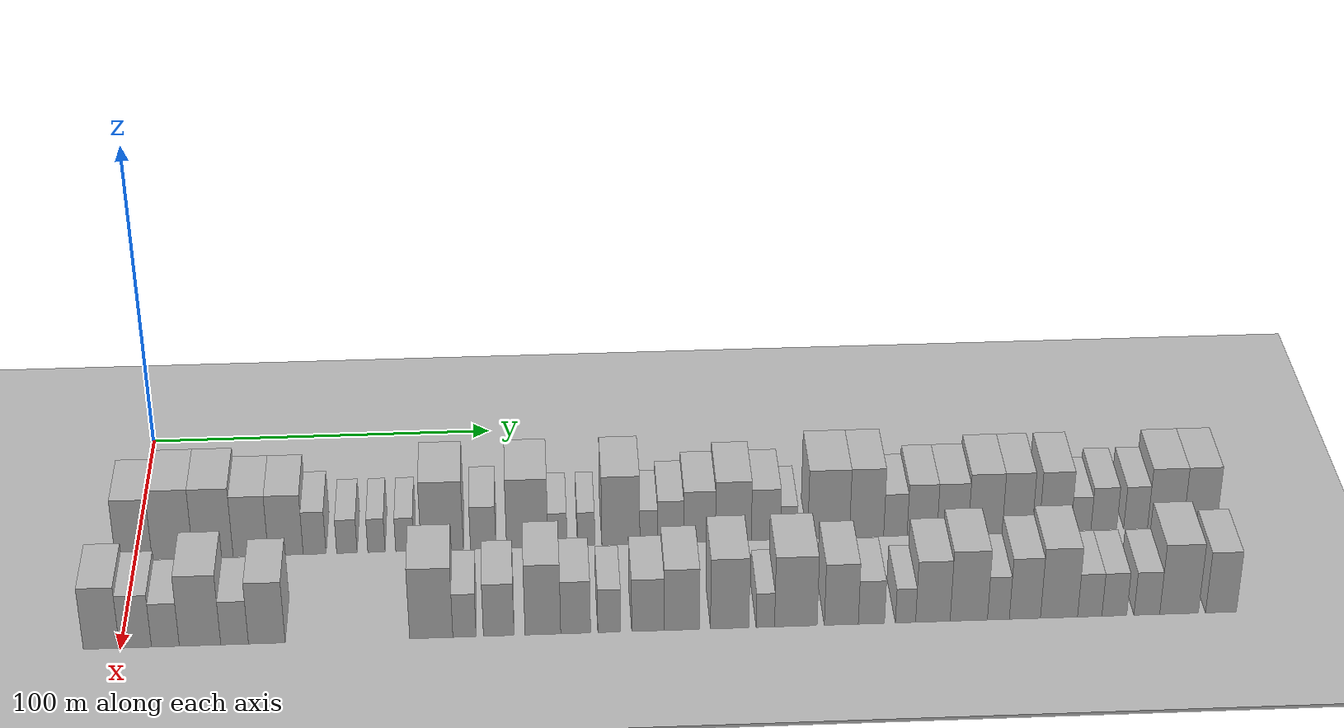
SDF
<sdf version="1.6">
 <world name="default">
  <include><name>ground_plane_1</name><uri>model://HANNAS_ground_plane</uri></include>
  <include>
   <name>ground_plane_2</name>
   <uri>model://HANNAS_ground_plane</uri>
   <pose>100 0 0  0 0 0</pose>
  </include>
  <model name="building_30">
   <static>1</static>
   <pose>50.0000 -0.1729 0 0.000000 0.000000 0.000000</pose>
   <link name="link">
    <pose>0 0 10.50 0 0 0</pose>
    <collision name="collision"><geometry><box><size>20.0000 10.2520 21.0000</size></box></geometry></collision>
    <visual name="visual">
     <cast_shadows>0</cast_shadows>
     <geometry><box><size>20.0000 10.2520 21.0000</size></box></geometry>
     <material>
      <script>
       <uri>model://HANNAS_wall/materials/scripts</uri>
       <uri>model://HANNAS_wall/materials/textures</uri>
       <name>vrc/HANNAS_wall</name>
      </script>
     </material>
    </visual>
   </link>
  </model>
  <model name="building_31">
   <static>1</static>
   <pose>50.0000 10.7029 0 0.000000 0.000000 0.000000</pose>
   <link name="link">
    <pose>0 0 12.00 0 0 0</pose>
    <collision name="collision"><geometry><box><size>20.0000 11.4996 24.0000</size></box></geometry></collision>
    <visual name="visual">
     <cast_shadows>0</cast_shadows>
     <geometry><box><size>20.0000 11.4996 24.0000</size></box></geometry>
     <material>
      <script>
       <uri>model://HANNAS_wall/materials/scripts</uri>
       <uri>model://HANNAS_wall/materials/textures</uri>
       <name>vrc/HANNAS_wall</name>
      </script>
     </material>
    </visual>
   </link>
  </model>
  <model name="building_32">
   <static>1</static>
   <pose>50.0000 22.0867 0 0.000000 0.000000 0.000000</pose>
   <link name="link">
    <pose>0 0 12.00 0 0 0</pose>
    <collision name="collision"><geometry><box><size>20.0000 11.2679 24.0000</size></box></geometry></collision>
    <visual name="visual">
     <cast_shadows>0</cast_shadows>
     <geometry><box><size>20.0000 11.2679 24.0000</size></box></geometry>
     <material>
      <script>
       <uri>model://HANNAS_wall/materials/scripts</uri>
       <uri>model://HANNAS_wall/materials/textures</uri>
       <name>vrc/HANNAS_wall</name>
      </script>
     </material>
    </visual>
   </link>
  </model>
  <model name="building_33">
   <static>1</static>
   <pose>50.0000 32.6490 0 0.000000 0.000000 0.000000</pose>
   <link name="link">
    <pose>0 0 10.50 0 0 0</pose>
    <collision name="collision"><geometry><box><size>20.0000 9.8569 21.0000</size></box></geometry></collision>
    <visual name="visual">
     <cast_shadows>0</cast_shadows>
     <geometry><box><size>20.0000 9.8569 21.0000</size></box></geometry>
     <material>
      <script>
       <uri>model://HANNAS_wall/materials/scripts</uri>
       <uri>model://HANNAS_wall/materials/textures</uri>
       <name>vrc/HANNAS_wall</name>
      </script>
     </material>
    </visual>
   </link>
  </model>
  <model name="building_34">
   <static>1</static>
   <pose>50.0000 42.4987 0 0.000000 0.000000 0.000000</pose>
   <link name="link">
    <pose>0 0 10.50 0 0 0</pose>
    <collision name="collision"><geometry><box><size>20.0000 9.8425 21.0000</size></box></geometry></collision>
    <visual name="visual">
     <cast_shadows>0</cast_shadows>
     <geometry><box><size>20.0000 9.8425 21.0000</size></box></geometry>
     <material>
      <script>
       <uri>model://HANNAS_wall/materials/scripts</uri>
       <uri>model://HANNAS_wall/materials/textures</uri>
       <name>vrc/HANNAS_wall</name>
      </script>
     </material>
    </visual>
   </link>
  </model>
  <model name="building_35">
   <static>1</static>
   <pose>50.0000 50.6380 0 0.000000 0.000000 0.000000</pose>
   <link name="link">
    <pose>0 0 7.50 0 0 0</pose>
    <collision name="collision"><geometry><box><size>20.0000 6.4363 15.0000</size></box></geometry></collision>
    <visual name="visual">
     <cast_shadows>0</cast_shadows>
     <geometry><box><size>20.0000 6.4363 15.0000</size></box></geometry>
     <material>
      <script>
       <uri>model://HANNAS_wall/materials/scripts</uri>
       <uri>model://HANNAS_wall/materials/textures</uri>
       <name>vrc/HANNAS_wall</name>
      </script>
     </material>
    </visual>
   </link>
  </model>
  <model name="building_36">
   <static>1</static>
   <pose>50.0000 59.7436 0 0.000000 0.000000 0.000000</pose>
   <link name="link">
    <pose>0 0 6.00 0 0 0</pose>
    <collision name="collision"><geometry><box><size>20.0000 5.7747 12.0000</size></box></geometry></collision>
    <visual name="visual">
     <cast_shadows>0</cast_shadows>
     <geometry><box><size>20.0000 5.7747 12.0000</size></box></geometry>
     <material>
      <script>
       <uri>model://HANNAS_wall/materials/scripts</uri>
       <uri>model://HANNAS_wall/materials/textures</uri>
       <name>vrc/HANNAS_wall</name>
      </script>
     </material>
    </visual>
   </link>
  </model>
  <model name="building_37">
   <static>1</static>
   <pose>50.0000 68.0749 0 0.000000 0.000000 0.000000</pose>
   <link name="link">
    <pose>0 0 6.00 0 0 0</pose>
    <collision name="collision"><geometry><box><size>20.0000 4.8880 12.0000</size></box></geometry></collision>
    <visual name="visual">
     <cast_shadows>0</cast_shadows>
     <geometry><box><size>20.0000 4.8880 12.0000</size></box></geometry>
     <material>
      <script>
       <uri>model://HANNAS_wall/materials/scripts</uri>
       <uri>model://HANNAS_wall/materials/textures</uri>
       <name>vrc/HANNAS_wall</name>
      </script>
     </material>
    </visual>
   </link>
  </model>
  <model name="building_38">
   <static>1</static>
   <pose>50.0000 76.0985 0 0.000000 0.000000 0.000000</pose>
   <link name="link">
    <pose>0 0 6.00 0 0 0</pose>
    <collision name="collision"><geometry><box><size>20.0000 5.1592 12.0000</size></box></geometry></collision>
    <visual name="visual">
     <cast_shadows>0</cast_shadows>
     <geometry><box><size>20.0000 5.1592 12.0000</size></box></geometry>
     <material>
      <script>
       <uri>model://HANNAS_wall/materials/scripts</uri>
       <uri>model://HANNAS_wall/materials/textures</uri>
       <name>vrc/HANNAS_wall</name>
      </script>
     </material>
    </visual>
   </link>
  </model>
  <model name="building_39">
   <static>1</static>
   <pose>50.0000 86.6668 0 0.000000 0.000000 0.000000</pose>
   <link name="link">
    <pose>0 0 12.00 0 0 0</pose>
    <collision name="collision"><geometry><box><size>20.0000 11.9774 24.0000</size></box></geometry></collision>
    <visual name="visual">
     <cast_shadows>0</cast_shadows>
     <geometry><box><size>20.0000 11.9774 24.0000</size></box></geometry>
     <material>
      <script>
       <uri>model://HANNAS_wall/materials/scripts</uri>
       <uri>model://HANNAS_wall/materials/textures</uri>
       <name>vrc/HANNAS_wall</name>
      </script>
     </material>
    </visual>
   </link>
  </model>
  <model name="building_40">
   <static>1</static>
   <pose>50.0000 98.2690 0 0.000000 0.000000 0.000000</pose>
   <link name="link">
    <pose>0 0 7.50 0 0 0</pose>
    <collision name="collision"><geometry><box><size>20.0000 7.2270 15.0000</size></box></geometry></collision>
    <visual name="visual">
     <cast_shadows>0</cast_shadows>
     <geometry><box><size>20.0000 7.2270 15.0000</size></box></geometry>
     <material>
      <script>
       <uri>model://HANNAS_wall/materials/scripts</uri>
       <uri>model://HANNAS_wall/materials/textures</uri>
       <name>vrc/HANNAS_wall</name>
      </script>
     </material>
    </visual>
   </link>
  </model>
  <model name="building_41">
   <static>1</static>
   <pose>50.0000 110.7591 0 0.000000 0.000000 0.000000</pose>
   <link name="link">
    <pose>0 0 12.00 0 0 0</pose>
    <collision name="collision"><geometry><box><size>20.0000 11.7533 24.0000</size></box></geometry></collision>
    <visual name="visual">
     <cast_shadows>0</cast_shadows>
     <geometry><box><size>20.0000 11.7533 24.0000</size></box></geometry>
     <material>
      <script>
       <uri>model://HANNAS_wall/materials/scripts</uri>
       <uri>model://HANNAS_wall/materials/textures</uri>
       <name>vrc/HANNAS_wall</name>
      </script>
     </material>
    </visual>
   </link>
  </model>
  <model name="building_42">
   <static>1</static>
   <pose>50.0000 119.3263 0 0.000000 0.000000 0.000000</pose>
   <link name="link">
    <pose>0 0 6.00 0 0 0</pose>
    <collision name="collision"><geometry><box><size>20.0000 5.3810 12.0000</size></box></geometry></collision>
    <visual name="visual">
     <cast_shadows>0</cast_shadows>
     <geometry><box><size>20.0000 5.3810 12.0000</size></box></geometry>
     <material>
      <script>
       <uri>model://HANNAS_wall/materials/scripts</uri>
       <uri>model://HANNAS_wall/materials/textures</uri>
       <name>vrc/HANNAS_wall</name>
      </script>
     </material>
    </visual>
   </link>
  </model>
  <model name="building_43">
   <static>1</static>
   <pose>50.0000 127.4678 0 0.000000 0.000000 0.000000</pose>
   <link name="link">
    <pose>0 0 6.00 0 0 0</pose>
    <collision name="collision"><geometry><box><size>20.0000 4.9020 12.0000</size></box></geometry></collision>
    <visual name="visual">
     <cast_shadows>0</cast_shadows>
     <geometry><box><size>20.0000 4.9020 12.0000</size></box></geometry>
     <material>
      <script>
       <uri>model://HANNAS_wall/materials/scripts</uri>
       <uri>model://HANNAS_wall/materials/textures</uri>
       <name>vrc/HANNAS_wall</name>
      </script>
     </material>
    </visual>
   </link>
  </model>
  <model name="building_44">
   <static>1</static>
   <pose>50.0000 137.3209 0 0.000000 0.000000 0.000000</pose>
   <link name="link">
    <pose>0 0 12.00 0 0 0</pose>
    <collision name="collision"><geometry><box><size>20.0000 10.8042 24.0000</size></box></geometry></collision>
    <visual name="visual">
     <cast_shadows>0</cast_shadows>
     <geometry><box><size>20.0000 10.8042 24.0000</size></box></geometry>
     <material>
      <script>
       <uri>model://HANNAS_wall/materials/scripts</uri>
       <uri>model://HANNAS_wall/materials/textures</uri>
       <name>vrc/HANNAS_wall</name>
      </script>
     </material>
    </visual>
   </link>
  </model>
  <model name="building_45">
   <static>1</static>
   <pose>50.0000 145.2696 0 0.000000 0.000000 0.000000</pose>
   <link name="link">
    <pose>0 0 6.00 0 0 0</pose>
    <collision name="collision"><geometry><box><size>20.0000 5.0934 12.0000</size></box></geometry></collision>
    <visual name="visual">
     <cast_shadows>0</cast_shadows>
     <geometry><box><size>20.0000 5.0934 12.0000</size></box></geometry>
     <material>
      <script>
       <uri>model://HANNAS_wall/materials/scripts</uri>
       <uri>model://HANNAS_wall/materials/textures</uri>
       <name>vrc/HANNAS_wall</name>
      </script>
     </material>
    </visual>
   </link>
  </model>
  <model name="building_46">
   <static>1</static>
   <pose>50.0000 151.5181 0 0.000000 0.000000 0.000000</pose>
   <link name="link">
    <pose>0 0 7.50 0 0 0</pose>
    <collision name="collision"><geometry><box><size>20.0000 7.4036 15.0000</size></box></geometry></collision>
    <visual name="visual">
     <cast_shadows>0</cast_shadows>
     <geometry><box><size>20.0000 7.4036 15.0000</size></box></geometry>
     <material>
      <script>
       <uri>model://HANNAS_wall/materials/scripts</uri>
       <uri>model://HANNAS_wall/materials/textures</uri>
       <name>vrc/HANNAS_wall</name>
      </script>
     </material>
    </visual>
   </link>
  </model>
  <model name="building_47">
   <static>1</static>
   <pose>50.0000 159.7162 0 0.000000 0.000000 0.000000</pose>
   <link name="link">
    <pose>0 0 9.00 0 0 0</pose>
    <collision name="collision"><geometry><box><size>20.0000 8.9927 18.0000</size></box></geometry></collision>
    <visual name="visual">
     <cast_shadows>0</cast_shadows>
     <geometry><box><size>20.0000 8.9927 18.0000</size></box></geometry>
     <material>
      <script>
       <uri>model://HANNAS_wall/materials/scripts</uri>
       <uri>model://HANNAS_wall/materials/textures</uri>
       <name>vrc/HANNAS_wall</name>
      </script>
     </material>
    </visual>
   </link>
  </model>
  <model name="building_48">
   <static>1</static>
   <pose>50.0000 169.3280 0 0.000000 0.000000 0.000000</pose>
   <link name="link">
    <pose>0 0 10.50 0 0 0</pose>
    <collision name="collision"><geometry><box><size>20.0000 10.2309 21.0000</size></box></geometry></collision>
    <visual name="visual">
     <cast_shadows>0</cast_shadows>
     <geometry><box><size>20.0000 10.2309 21.0000</size></box></geometry>
     <material>
      <script>
       <uri>model://HANNAS_wall/materials/scripts</uri>
       <uri>model://HANNAS_wall/materials/textures</uri>
       <name>vrc/HANNAS_wall</name>
      </script>
     </material>
    </visual>
   </link>
  </model>
  <model name="building_49">
   <static>1</static>
   <pose>50.0000 178.5929 0 0.000000 0.000000 0.000000</pose>
   <link name="link">
    <pose>0 0 9.00 0 0 0</pose>
    <collision name="collision"><geometry><box><size>20.0000 8.2989 18.0000</size></box></geometry></collision>
    <visual name="visual">
     <cast_shadows>0</cast_shadows>
     <geometry><box><size>20.0000 8.2989 18.0000</size></box></geometry>
     <material>
      <script>
       <uri>model://HANNAS_wall/materials/scripts</uri>
       <uri>model://HANNAS_wall/materials/textures</uri>
       <name>vrc/HANNAS_wall</name>
      </script>
     </material>
    </visual>
   </link>
  </model>
  <model name="building_50">
   <static>1</static>
   <pose>50.0000 185.1520 0 0.000000 0.000000 0.000000</pose>
   <link name="link">
    <pose>0 0 6.00 0 0 0</pose>
    <collision name="collision"><geometry><box><size>20.0000 4.8194 12.0000</size></box></geometry></collision>
    <visual name="visual">
     <cast_shadows>0</cast_shadows>
     <geometry><box><size>20.0000 4.8194 12.0000</size></box></geometry>
     <material>
      <script>
       <uri>model://HANNAS_wall/materials/scripts</uri>
       <uri>model://HANNAS_wall/materials/textures</uri>
       <name>vrc/HANNAS_wall</name>
      </script>
     </material>
    </visual>
   </link>
  </model>
  <model name="building_51">
   <static>1</static>
   <pose>50.0000 196.5299 0 0.000000 0.000000 0.000000</pose>
   <link name="link">
    <pose>0 0 12.00 0 0 0</pose>
    <collision name="collision"><geometry><box><size>20.0000 11.9364 24.0000</size></box></geometry></collision>
    <visual name="visual">
     <cast_shadows>0</cast_shadows>
     <geometry><box><size>20.0000 11.9364 24.0000</size></box></geometry>
     <material>
      <script>
       <uri>model://HANNAS_wall/materials/scripts</uri>
       <uri>model://HANNAS_wall/materials/textures</uri>
       <name>vrc/HANNAS_wall</name>
      </script>
     </material>
    </visual>
   </link>
  </model>
  <model name="building_52">
   <static>1</static>
   <pose>50.0000 207.3973 0 0.000000 0.000000 0.000000</pose>
   <link name="link">
    <pose>0 0 12.00 0 0 0</pose>
    <collision name="collision"><geometry><box><size>20.0000 9.7985 24.0000</size></box></geometry></collision>
    <visual name="visual">
     <cast_shadows>0</cast_shadows>
     <geometry><box><size>20.0000 9.7985 24.0000</size></box></geometry>
     <material>
      <script>
       <uri>model://HANNAS_wall/materials/scripts</uri>
       <uri>model://HANNAS_wall/materials/textures</uri>
       <name>vrc/HANNAS_wall</name>
      </script>
     </material>
    </visual>
   </link>
  </model>
  <model name="building_53">
   <static>1</static>
   <pose>50.0000 215.6552 0 0.000000 0.000000 0.000000</pose>
   <link name="link">
    <pose>0 0 7.50 0 0 0</pose>
    <collision name="collision"><geometry><box><size>20.0000 6.7173 15.0000</size></box></geometry></collision>
    <visual name="visual">
     <cast_shadows>0</cast_shadows>
     <geometry><box><size>20.0000 6.7173 15.0000</size></box></geometry>
     <material>
      <script>
       <uri>model://HANNAS_wall/materials/scripts</uri>
       <uri>model://HANNAS_wall/materials/textures</uri>
       <name>vrc/HANNAS_wall</name>
      </script>
     </material>
    </visual>
   </link>
  </model>
  <model name="building_54">
   <static>1</static>
   <pose>50.0000 223.3062 0 0.000000 0.000000 0.000000</pose>
   <link name="link">
    <pose>0 0 9.00 0 0 0</pose>
    <collision name="collision"><geometry><box><size>20.0000 8.5845 18.0000</size></box></geometry></collision>
    <visual name="visual">
     <cast_shadows>0</cast_shadows>
     <geometry><box><size>20.0000 8.5845 18.0000</size></box></geometry>
     <material>
      <script>
       <uri>model://HANNAS_wall/materials/scripts</uri>
       <uri>model://HANNAS_wall/materials/textures</uri>
       <name>vrc/HANNAS_wall</name>
      </script>
     </material>
    </visual>
   </link>
  </model>
  <model name="building_55">
   <static>1</static>
   <pose>50.0000 232.0798 0 0.000000 0.000000 0.000000</pose>
   <link name="link">
    <pose>0 0 9.00 0 0 0</pose>
    <collision name="collision"><geometry><box><size>20.0000 8.9626 18.0000</size></box></geometry></collision>
    <visual name="visual">
     <cast_shadows>0</cast_shadows>
     <geometry><box><size>20.0000 8.9626 18.0000</size></box></geometry>
     <material>
      <script>
       <uri>model://HANNAS_wall/materials/scripts</uri>
       <uri>model://HANNAS_wall/materials/textures</uri>
       <name>vrc/HANNAS_wall</name>
      </script>
     </material>
    </visual>
   </link>
  </model>
  <model name="building_56">
   <static>1</static>
   <pose>50.0000 241.4460 0 0.000000 0.000000 0.000000</pose>
   <link name="link">
    <pose>0 0 10.50 0 0 0</pose>
    <collision name="collision"><geometry><box><size>20.0000 9.7699 21.0000</size></box></geometry></collision>
    <visual name="visual">
     <cast_shadows>0</cast_shadows>
     <geometry><box><size>20.0000 9.7699 21.0000</size></box></geometry>
     <material>
      <script>
       <uri>model://HANNAS_wall/materials/scripts</uri>
       <uri>model://HANNAS_wall/materials/textures</uri>
       <name>vrc/HANNAS_wall</name>
      </script>
     </material>
    </visual>
   </link>
  </model>
  <model name="building_57">
   <static>1</static>
   <pose>50.0000 250.6309 0 0.000000 0.000000 0.000000</pose>
   <link name="link">
    <pose>0 0 10.50 0 0 0</pose>
    <collision name="collision"><geometry><box><size>20.0000 8.5998 21.0000</size></box></geometry></collision>
    <visual name="visual">
     <cast_shadows>0</cast_shadows>
     <geometry><box><size>20.0000 8.5998 21.0000</size></box></geometry>
     <material>
      <script>
       <uri>model://HANNAS_wall/materials/scripts</uri>
       <uri>model://HANNAS_wall/materials/textures</uri>
       <name>vrc/HANNAS_wall</name>
      </script>
     </material>
    </visual>
   </link>
  </model>
  <model name="building_58">
   <static>1</static>
   <pose>50.0000 261.5186 0 0.000000 0.000000 0.000000</pose>
   <link name="link">
    <pose>0 0 10.50 0 0 0</pose>
    <collision name="collision"><geometry><box><size>20.0000 9.1755 21.0000</size></box></geometry></collision>
    <visual name="visual">
     <cast_shadows>0</cast_shadows>
     <geometry><box><size>20.0000 9.1755 21.0000</size></box></geometry>
     <material>
      <script>
       <uri>model://HANNAS_wall/materials/scripts</uri>
       <uri>model://HANNAS_wall/materials/textures</uri>
       <name>vrc/HANNAS_wall</name>
      </script>
     </material>
    </visual>
   </link>
  </model>
  <model name="building_59">
   <static>1</static>
   <pose>50.0000 268.9922 0 0.000000 0.000000 0.000000</pose>
   <link name="link">
    <pose>0 0 6.00 0 0 0</pose>
    <collision name="collision"><geometry><box><size>20.0000 5.7719 12.0000</size></box></geometry></collision>
    <visual name="visual">
     <cast_shadows>0</cast_shadows>
     <geometry><box><size>20.0000 5.7719 12.0000</size></box></geometry>
     <material>
      <script>
       <uri>model://HANNAS_wall/materials/scripts</uri>
       <uri>model://HANNAS_wall/materials/textures</uri>
       <name>vrc/HANNAS_wall</name>
      </script>
     </material>
    </visual>
   </link>
  </model>
  <model name="building_60">
   <static>1</static>
   <pose>50.0000 275.5932 0 0.000000 0.000000 0.000000</pose>
   <link name="link">
    <pose>0 0 7.50 0 0 0</pose>
    <collision name="collision"><geometry><box><size>20.0000 7.4302 15.0000</size></box></geometry></collision>
    <visual name="visual">
     <cast_shadows>0</cast_shadows>
     <geometry><box><size>20.0000 7.4302 15.0000</size></box></geometry>
     <material>
      <script>
       <uri>model://HANNAS_wall/materials/scripts</uri>
       <uri>model://HANNAS_wall/materials/textures</uri>
       <name>vrc/HANNAS_wall</name>
      </script>
     </material>
    </visual>
   </link>
  </model>
  <model name="building_61">
   <static>1</static>
   <pose>50.0000 284.7590 0 0.000000 0.000000 0.000000</pose>
   <link name="link">
    <pose>0 0 7.50 0 0 0</pose>
    <collision name="collision"><geometry><box><size>20.0000 6.9014 15.0000</size></box></geometry></collision>
    <visual name="visual">
     <cast_shadows>0</cast_shadows>
     <geometry><box><size>20.0000 6.9014 15.0000</size></box></geometry>
     <material>
      <script>
       <uri>model://HANNAS_wall/materials/scripts</uri>
       <uri>model://HANNAS_wall/materials/textures</uri>
       <name>vrc/HANNAS_wall</name>
      </script>
     </material>
    </visual>
   </link>
  </model>
  <model name="building_62">
   <static>1</static>
   <pose>50.0000 293.3827 0 0.000000 0.000000 0.000000</pose>
   <link name="link">
    <pose>0 0 10.50 0 0 0</pose>
    <collision name="collision"><geometry><box><size>20.0000 10.3460 21.0000</size></box></geometry></collision>
    <visual name="visual">
     <cast_shadows>0</cast_shadows>
     <geometry><box><size>20.0000 10.3460 21.0000</size></box></geometry>
     <material>
      <script>
       <uri>model://HANNAS_wall/materials/scripts</uri>
       <uri>model://HANNAS_wall/materials/textures</uri>
       <name>vrc/HANNAS_wall</name>
      </script>
     </material>
    </visual>
   </link>
  </model>
  <model name="building_63">
   <static>1</static>
   <pose>50.0000 303.3635 0 0.000000 0.000000 0.000000</pose>
   <link name="link">
    <pose>0 0 10.50 0 0 0</pose>
    <collision name="collision"><geometry><box><size>20.0000 9.6156 21.0000</size></box></geometry></collision>
    <visual name="visual">
     <cast_shadows>0</cast_shadows>
     <geometry><box><size>20.0000 9.6156 21.0000</size></box></geometry>
     <material>
      <script>
       <uri>model://HANNAS_wall/materials/scripts</uri>
       <uri>model://HANNAS_wall/materials/textures</uri>
       <name>vrc/HANNAS_wall</name>
      </script>
     </material>
    </visual>
   </link>
  </model>
  <model name="building_99">
   <static>1</static>
   <pose>90.0000 -5.1140 0 0.000000 0.000000 0.000000</pose>
   <link name="link">
    <pose>0 0 10.50 0 0 0</pose>
    <collision name="collision"><geometry><box><size>20.0000 9.7519 21.0000</size></box></geometry></collision>
    <visual name="visual">
     <cast_shadows>0</cast_shadows>
     <geometry><box><size>20.0000 9.7519 21.0000</size></box></geometry>
     <material>
      <script>
       <uri>model://HANNAS_wall/materials/scripts</uri>
       <uri>model://HANNAS_wall/materials/textures</uri>
       <name>vrc/HANNAS_wall</name>
      </script>
     </material>
    </visual>
   </link>
  </model>
  <model name="building_100">
   <static>1</static>
   <pose>90.0000 4.0656 0 0.000000 0.000000 0.000000</pose>
   <link name="link">
    <pose>0 0 9.00 0 0 0</pose>
    <collision name="collision"><geometry><box><size>20.0000 8.6072 18.0000</size></box></geometry></collision>
    <visual name="visual">
     <cast_shadows>0</cast_shadows>
     <geometry><box><size>20.0000 8.6072 18.0000</size></box></geometry>
     <material>
      <script>
       <uri>model://HANNAS_wall/materials/scripts</uri>
       <uri>model://HANNAS_wall/materials/textures</uri>
       <name>vrc/HANNAS_wall</name>
      </script>
     </material>
    </visual>
   </link>
  </model>
  <model name="building_101">
   <static>1</static>
   <pose>90.0000 12.1184 0 0.000000 0.000000 0.000000</pose>
   <link name="link">
    <pose>0 0 7.50 0 0 0</pose>
    <collision name="collision"><geometry><box><size>20.0000 7.4985 15.0000</size></box></geometry></collision>
    <visual name="visual">
     <cast_shadows>0</cast_shadows>
     <geometry><box><size>20.0000 7.4985 15.0000</size></box></geometry>
     <material>
      <script>
       <uri>model://HANNAS_wall/materials/scripts</uri>
       <uri>model://HANNAS_wall/materials/textures</uri>
       <name>vrc/HANNAS_wall</name>
      </script>
     </material>
    </visual>
   </link>
  </model>
  <model name="building_102">
   <static>1</static>
   <pose>90.0000 21.4566 0 0.000000 0.000000 0.000000</pose>
   <link name="link">
    <pose>0 0 12.00 0 0 0</pose>
    <collision name="collision"><geometry><box><size>20.0000 11.1780 24.0000</size></box></geometry></collision>
    <visual name="visual">
     <cast_shadows>0</cast_shadows>
     <geometry><box><size>20.0000 11.1780 24.0000</size></box></geometry>
     <material>
      <script>
       <uri>model://HANNAS_wall/materials/scripts</uri>
       <uri>model://HANNAS_wall/materials/textures</uri>
       <name>vrc/HANNAS_wall</name>
      </script>
     </material>
    </visual>
   </link>
  </model>
  <model name="building_103">
   <static>1</static>
   <pose>90.0000 30.7810 0 0.000000 0.000000 0.000000</pose>
   <link name="link">
    <pose>0 0 7.50 0 0 0</pose>
    <collision name="collision"><geometry><box><size>20.0000 7.4707 15.0000</size></box></geometry></collision>
    <visual name="visual">
     <cast_shadows>0</cast_shadows>
     <geometry><box><size>20.0000 7.4707 15.0000</size></box></geometry>
     <material>
      <script>
       <uri>model://HANNAS_wall/materials/scripts</uri>
       <uri>model://HANNAS_wall/materials/textures</uri>
       <name>vrc/HANNAS_wall</name>
      </script>
     </material>
    </visual>
   </link>
  </model>
  <model name="building_104">
   <static>1</static>
   <pose>90.0000 39.4867 0 0.000000 0.000000 0.000000</pose>
   <link name="link">
    <pose>0 0 10.50 0 0 0</pose>
    <collision name="collision"><geometry><box><size>20.0000 9.9407 21.0000</size></box></geometry></collision>
    <visual name="visual">
     <cast_shadows>0</cast_shadows>
     <geometry><box><size>20.0000 9.9407 21.0000</size></box></geometry>
     <material>
      <script>
       <uri>model://HANNAS_wall/materials/scripts</uri>
       <uri>model://HANNAS_wall/materials/textures</uri>
       <name>vrc/HANNAS_wall</name>
      </script>
     </material>
    </visual>
   </link>
  </model>
  <model name="building_105">
   <static>1</static>
   <pose>90.0000 84.0573 0 0.000000 0.000000 0.000000</pose>
   <link name="link">
    <pose>0 0 12.00 0 0 0</pose>
    <collision name="collision"><geometry><box><size>20.0000 11.7335 24.0000</size></box></geometry></collision>
    <visual name="visual">
     <cast_shadows>0</cast_shadows>
     <geometry><box><size>20.0000 11.7335 24.0000</size></box></geometry>
     <material>
      <script>
       <uri>model://HANNAS_wall/materials/scripts</uri>
       <uri>model://HANNAS_wall/materials/textures</uri>
       <name>vrc/HANNAS_wall</name>
      </script>
     </material>
    </visual>
   </link>
  </model>
  <model name="building_106">
   <static>1</static>
   <pose>90.0000 93.0801 0 0.000000 0.000000 0.000000</pose>
   <link name="link">
    <pose>0 0 7.50 0 0 0</pose>
    <collision name="collision"><geometry><box><size>20.0000 6.3120 15.0000</size></box></geometry></collision>
    <visual name="visual">
     <cast_shadows>0</cast_shadows>
     <geometry><box><size>20.0000 6.3120 15.0000</size></box></geometry>
     <material>
      <script>
       <uri>model://HANNAS_wall/materials/scripts</uri>
       <uri>model://HANNAS_wall/materials/textures</uri>
       <name>vrc/HANNAS_wall</name>
      </script>
     </material>
    </visual>
   </link>
  </model>
  <model name="building_107">
   <static>1</static>
   <pose>90.0000 102.4024 0 0.000000 0.000000 0.000000</pose>
   <link name="link">
    <pose>0 0 9.00 0 0 0</pose>
    <collision name="collision"><geometry><box><size>20.0000 8.3327 18.0000</size></box></geometry></collision>
    <visual name="visual">
     <cast_shadows>0</cast_shadows>
     <geometry><box><size>20.0000 8.3327 18.0000</size></box></geometry>
     <material>
      <script>
       <uri>model://HANNAS_wall/materials/scripts</uri>
       <uri>model://HANNAS_wall/materials/textures</uri>
       <name>vrc/HANNAS_wall</name>
      </script>
     </material>
    </visual>
   </link>
  </model>
  <model name="building_108">
   <static>1</static>
   <pose>90.0000 114.4295 0 0.000000 0.000000 0.000000</pose>
   <link name="link">
    <pose>0 0 12.00 0 0 0</pose>
    <collision name="collision"><geometry><box><size>20.0000 9.7215 24.0000</size></box></geometry></collision>
    <visual name="visual">
     <cast_shadows>0</cast_shadows>
     <geometry><box><size>20.0000 9.7215 24.0000</size></box></geometry>
     <material>
      <script>
       <uri>model://HANNAS_wall/materials/scripts</uri>
       <uri>model://HANNAS_wall/materials/textures</uri>
       <name>vrc/HANNAS_wall</name>
      </script>
     </material>
    </visual>
   </link>
  </model>
  <model name="building_109">
   <static>1</static>
   <pose>90.0000 123.3558 0 0.000000 0.000000 0.000000</pose>
   <link name="link">
    <pose>0 0 9.00 0 0 0</pose>
    <collision name="collision"><geometry><box><size>20.0000 8.1311 18.0000</size></box></geometry></collision>
    <visual name="visual">
     <cast_shadows>0</cast_shadows>
     <geometry><box><size>20.0000 8.1311 18.0000</size></box></geometry>
     <material>
      <script>
       <uri>model://HANNAS_wall/materials/scripts</uri>
       <uri>model://HANNAS_wall/materials/textures</uri>
       <name>vrc/HANNAS_wall</name>
      </script>
     </material>
    </visual>
   </link>
  </model>
  <model name="building_110">
   <static>1</static>
   <pose>90.0000 132.5464 0 0.000000 0.000000 0.000000</pose>
   <link name="link">
    <pose>0 0 7.50 0 0 0</pose>
    <collision name="collision"><geometry><box><size>20.0000 6.2500 15.0000</size></box></geometry></collision>
    <visual name="visual">
     <cast_shadows>0</cast_shadows>
     <geometry><box><size>20.0000 6.2500 15.0000</size></box></geometry>
     <material>
      <script>
       <uri>model://HANNAS_wall/materials/scripts</uri>
       <uri>model://HANNAS_wall/materials/textures</uri>
       <name>vrc/HANNAS_wall</name>
      </script>
     </material>
    </visual>
   </link>
  </model>
  <model name="building_111">
   <static>1</static>
   <pose>90.0000 143.1398 0 0.000000 0.000000 0.000000</pose>
   <link name="link">
    <pose>0 0 9.00 0 0 0</pose>
    <collision name="collision"><geometry><box><size>20.0000 8.9369 18.0000</size></box></geometry></collision>
    <visual name="visual">
     <cast_shadows>0</cast_shadows>
     <geometry><box><size>20.0000 8.9369 18.0000</size></box></geometry>
     <material>
      <script>
       <uri>model://HANNAS_wall/materials/scripts</uri>
       <uri>model://HANNAS_wall/materials/textures</uri>
       <name>vrc/HANNAS_wall</name>
      </script>
     </material>
    </visual>
   </link>
  </model>
  <model name="building_112">
   <static>1</static>
   <pose>90.0000 152.4070 0 0.000000 0.000000 0.000000</pose>
   <link name="link">
    <pose>0 0 10.50 0 0 0</pose>
    <collision name="collision"><geometry><box><size>20.0000 9.5974 21.0000</size></box></geometry></collision>
    <visual name="visual">
     <cast_shadows>0</cast_shadows>
     <geometry><box><size>20.0000 9.5974 21.0000</size></box></geometry>
     <material>
      <script>
       <uri>model://HANNAS_wall/materials/scripts</uri>
       <uri>model://HANNAS_wall/materials/textures</uri>
       <name>vrc/HANNAS_wall</name>
      </script>
     </material>
    </visual>
   </link>
  </model>
  <model name="building_113">
   <static>1</static>
   <pose>90.0000 165.4637 0 0.000000 0.000000 0.000000</pose>
   <link name="link">
    <pose>0 0 12.00 0 0 0</pose>
    <collision name="collision"><geometry><box><size>20.0000 10.5160 24.0000</size></box></geometry></collision>
    <visual name="visual">
     <cast_shadows>0</cast_shadows>
     <geometry><box><size>20.0000 10.5160 24.0000</size></box></geometry>
     <material>
      <script>
       <uri>model://HANNAS_wall/materials/scripts</uri>
       <uri>model://HANNAS_wall/materials/textures</uri>
       <name>vrc/HANNAS_wall</name>
      </script>
     </material>
    </visual>
   </link>
  </model>
  <model name="building_114">
   <static>1</static>
   <pose>90.0000 175.2450 0 0.000000 0.000000 0.000000</pose>
   <link name="link">
    <pose>0 0 6.00 0 0 0</pose>
    <collision name="collision"><geometry><box><size>20.0000 5.0466 12.0000</size></box></geometry></collision>
    <visual name="visual">
     <cast_shadows>0</cast_shadows>
     <geometry><box><size>20.0000 5.0466 12.0000</size></box></geometry>
     <material>
      <script>
       <uri>model://HANNAS_wall/materials/scripts</uri>
       <uri>model://HANNAS_wall/materials/textures</uri>
       <name>vrc/HANNAS_wall</name>
      </script>
     </material>
    </visual>
   </link>
  </model>
  <model name="building_115">
   <static>1</static>
   <pose>90.0000 183.6049 0 0.000000 0.000000 0.000000</pose>
   <link name="link">
    <pose>0 0 12.00 0 0 0</pose>
    <collision name="collision"><geometry><box><size>20.0000 11.6730 24.0000</size></box></geometry></collision>
    <visual name="visual">
     <cast_shadows>0</cast_shadows>
     <geometry><box><size>20.0000 11.6730 24.0000</size></box></geometry>
     <material>
      <script>
       <uri>model://HANNAS_wall/materials/scripts</uri>
       <uri>model://HANNAS_wall/materials/textures</uri>
       <name>vrc/HANNAS_wall</name>
      </script>
     </material>
    </visual>
   </link>
  </model>
  <model name="building_116">
   <static>1</static>
   <pose>90.0000 196.1073 0 0.000000 0.000000 0.000000</pose>
   <link name="link">
    <pose>0 0 10.50 0 0 0</pose>
    <collision name="collision"><geometry><box><size>20.0000 9.3318 21.0000</size></box></geometry></collision>
    <visual name="visual">
     <cast_shadows>0</cast_shadows>
     <geometry><box><size>20.0000 9.3318 21.0000</size></box></geometry>
     <material>
      <script>
       <uri>model://HANNAS_wall/materials/scripts</uri>
       <uri>model://HANNAS_wall/materials/textures</uri>
       <name>vrc/HANNAS_wall</name>
      </script>
     </material>
    </visual>
   </link>
  </model>
  <model name="building_117">
   <static>1</static>
   <pose>90.0000 204.3798 0 0.000000 0.000000 0.000000</pose>
   <link name="link">
    <pose>0 0 7.50 0 0 0</pose>
    <collision name="collision"><geometry><box><size>20.0000 7.2131 15.0000</size></box></geometry></collision>
    <visual name="visual">
     <cast_shadows>0</cast_shadows>
     <geometry><box><size>20.0000 7.2131 15.0000</size></box></geometry>
     <material>
      <script>
       <uri>model://HANNAS_wall/materials/scripts</uri>
       <uri>model://HANNAS_wall/materials/textures</uri>
       <name>vrc/HANNAS_wall</name>
      </script>
     </material>
    </visual>
   </link>
  </model>
  <model name="building_118">
   <static>1</static>
   <pose>90.0000 213.7672 0 0.000000 0.000000 0.000000</pose>
   <link name="link">
    <pose>0 0 6.00 0 0 0</pose>
    <collision name="collision"><geometry><box><size>20.0000 5.5617 12.0000</size></box></geometry></collision>
    <visual name="visual">
     <cast_shadows>0</cast_shadows>
     <geometry><box><size>20.0000 5.5617 12.0000</size></box></geometry>
     <material>
      <script>
       <uri>model://HANNAS_wall/materials/scripts</uri>
       <uri>model://HANNAS_wall/materials/textures</uri>
       <name>vrc/HANNAS_wall</name>
      </script>
     </material>
    </visual>
   </link>
  </model>
  <model name="building_119">
   <static>1</static>
   <pose>90.0000 221.3002 0 0.000000 0.000000 0.000000</pose>
   <link name="link">
    <pose>0 0 10.50 0 0 0</pose>
    <collision name="collision"><geometry><box><size>20.0000 9.5045 21.0000</size></box></geometry></collision>
    <visual name="visual">
     <cast_shadows>0</cast_shadows>
     <geometry><box><size>20.0000 9.5045 21.0000</size></box></geometry>
     <material>
      <script>
       <uri>model://HANNAS_wall/materials/scripts</uri>
       <uri>model://HANNAS_wall/materials/textures</uri>
       <name>vrc/HANNAS_wall</name>
      </script>
     </material>
    </visual>
   </link>
  </model>
  <model name="building_120">
   <static>1</static>
   <pose>90.0000 231.2058 0 0.000000 0.000000 0.000000</pose>
   <link name="link">
    <pose>0 0 12.00 0 0 0</pose>
    <collision name="collision"><geometry><box><size>20.0000 10.3067 24.0000</size></box></geometry></collision>
    <visual name="visual">
     <cast_shadows>0</cast_shadows>
     <geometry><box><size>20.0000 10.3067 24.0000</size></box></geometry>
     <material>
      <script>
       <uri>model://HANNAS_wall/materials/scripts</uri>
       <uri>model://HANNAS_wall/materials/textures</uri>
       <name>vrc/HANNAS_wall</name>
      </script>
     </material>
    </visual>
   </link>
  </model>
  <model name="building_121">
   <static>1</static>
   <pose>90.0000 239.3805 0 0.000000 0.000000 0.000000</pose>
   <link name="link">
    <pose>0 0 7.50 0 0 0</pose>
    <collision name="collision"><geometry><box><size>20.0000 6.0427 15.0000</size></box></geometry></collision>
    <visual name="visual">
     <cast_shadows>0</cast_shadows>
     <geometry><box><size>20.0000 6.0427 15.0000</size></box></geometry>
     <material>
      <script>
       <uri>model://HANNAS_wall/materials/scripts</uri>
       <uri>model://HANNAS_wall/materials/textures</uri>
       <name>vrc/HANNAS_wall</name>
      </script>
     </material>
    </visual>
   </link>
  </model>
  <model name="building_122">
   <static>1</static>
   <pose>90.0000 246.7032 0 0.000000 0.000000 0.000000</pose>
   <link name="link">
    <pose>0 0 10.50 0 0 0</pose>
    <collision name="collision"><geometry><box><size>20.0000 8.6027 21.0000</size></box></geometry></collision>
    <visual name="visual">
     <cast_shadows>0</cast_shadows>
     <geometry><box><size>20.0000 8.6027 21.0000</size></box></geometry>
     <material>
      <script>
       <uri>model://HANNAS_wall/materials/scripts</uri>
       <uri>model://HANNAS_wall/materials/textures</uri>
       <name>vrc/HANNAS_wall</name>
      </script>
     </material>
    </visual>
   </link>
  </model>
  <model name="building_123">
   <static>1</static>
   <pose>90.0000 256.1412 0 0.000000 0.000000 0.000000</pose>
   <link name="link">
    <pose>0 0 12.00 0 0 0</pose>
    <collision name="collision"><geometry><box><size>20.0000 10.2732 24.0000</size></box></geometry></collision>
    <visual name="visual">
     <cast_shadows>0</cast_shadows>
     <geometry><box><size>20.0000 10.2732 24.0000</size></box></geometry>
     <material>
      <script>
       <uri>model://HANNAS_wall/materials/scripts</uri>
       <uri>model://HANNAS_wall/materials/textures</uri>
       <name>vrc/HANNAS_wall</name>
      </script>
     </material>
    </visual>
   </link>
  </model>
  <model name="building_124">
   <static>1</static>
   <pose>90.0000 264.6448 0 0.000000 0.000000 0.000000</pose>
   <link name="link">
    <pose>0 0 7.50 0 0 0</pose>
    <collision name="collision"><geometry><box><size>20.0000 6.7341 15.0000</size></box></geometry></collision>
    <visual name="visual">
     <cast_shadows>0</cast_shadows>
     <geometry><box><size>20.0000 6.7341 15.0000</size></box></geometry>
     <material>
      <script>
       <uri>model://HANNAS_wall/materials/scripts</uri>
       <uri>model://HANNAS_wall/materials/textures</uri>
       <name>vrc/HANNAS_wall</name>
      </script>
     </material>
    </visual>
   </link>
  </model>
  <model name="building_125">
   <static>1</static>
   <pose>90.0000 271.4513 0 0.000000 0.000000 0.000000</pose>
   <link name="link">
    <pose>0 0 7.50 0 0 0</pose>
    <collision name="collision"><geometry><box><size>20.0000 6.8788 15.0000</size></box></geometry></collision>
    <visual name="visual">
     <cast_shadows>0</cast_shadows>
     <geometry><box><size>20.0000 6.8788 15.0000</size></box></geometry>
     <material>
      <script>
       <uri>model://HANNAS_wall/materials/scripts</uri>
       <uri>model://HANNAS_wall/materials/textures</uri>
       <name>vrc/HANNAS_wall</name>
      </script>
     </material>
    </visual>
   </link>
  </model>
  <model name="building_126">
   <static>1</static>
   <pose>90.0000 280.4668 0 0.000000 0.000000 0.000000</pose>
   <link name="link">
    <pose>0 0 7.50 0 0 0</pose>
    <collision name="collision"><geometry><box><size>20.0000 7.1521 15.0000</size></box></geometry></collision>
    <visual name="visual">
     <cast_shadows>0</cast_shadows>
     <geometry><box><size>20.0000 7.1521 15.0000</size></box></geometry>
     <material>
      <script>
       <uri>model://HANNAS_wall/materials/scripts</uri>
       <uri>model://HANNAS_wall/materials/textures</uri>
       <name>vrc/HANNAS_wall</name>
      </script>
     </material>
    </visual>
   </link>
  </model>
  <model name="building_127">
   <static>1</static>
   <pose>90.0000 289.4081 0 0.000000 0.000000 0.000000</pose>
   <link name="link">
    <pose>0 0 12.00 0 0 0</pose>
    <collision name="collision"><geometry><box><size>20.0000 10.7305 24.0000</size></box></geometry></collision>
    <visual name="visual">
     <cast_shadows>0</cast_shadows>
     <geometry><box><size>20.0000 10.7305 24.0000</size></box></geometry>
     <material>
      <script>
       <uri>model://HANNAS_wall/materials/scripts</uri>
       <uri>model://HANNAS_wall/materials/textures</uri>
       <name>vrc/HANNAS_wall</name>
      </script>
     </material>
    </visual>
   </link>
  </model>
  <model name="building_128">
   <static>1</static>
   <pose>90.0000 301.0572 0 0.000000 0.000000 0.000000</pose>
   <link name="link">
    <pose>0 0 10.50 0 0 0</pose>
    <collision name="collision"><geometry><box><size>20.0000 8.5676 21.0000</size></box></geometry></collision>
    <visual name="visual">
     <cast_shadows>0</cast_shadows>
     <geometry><box><size>20.0000 8.5676 21.0000</size></box></geometry>
     <material>
      <script>
       <uri>model://HANNAS_wall/materials/scripts</uri>
       <uri>model://HANNAS_wall/materials/textures</uri>
       <name>vrc/HANNAS_wall</name>
      </script>
     </material>
    </visual>
   </link>
  </model>
 </world>
</sdf>
